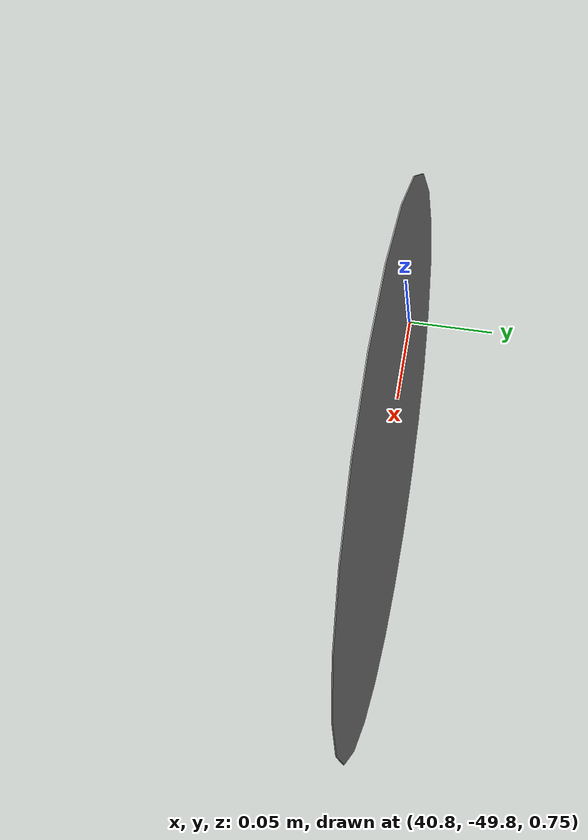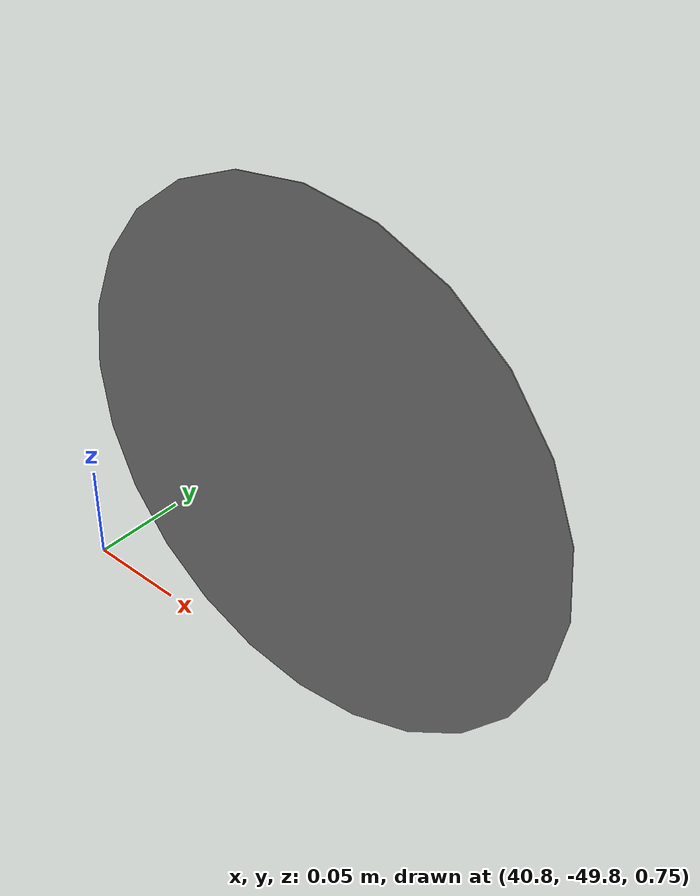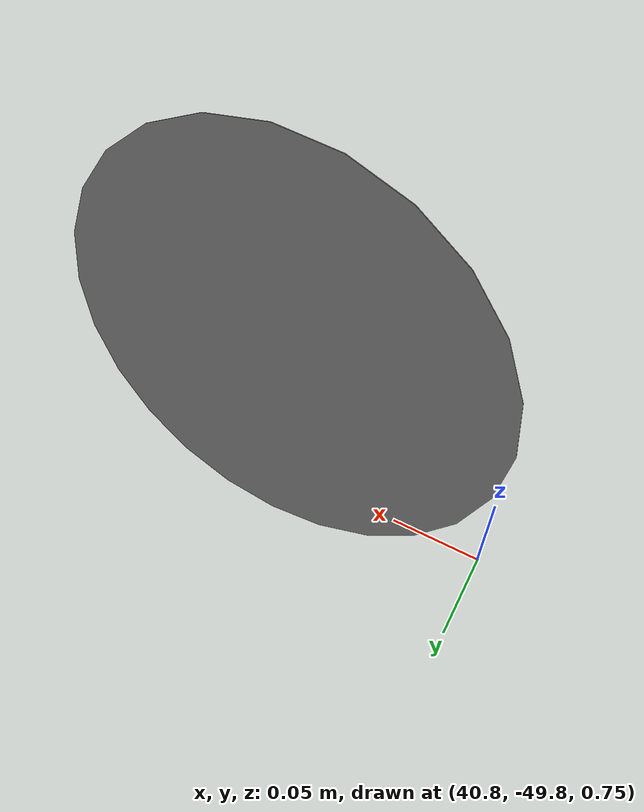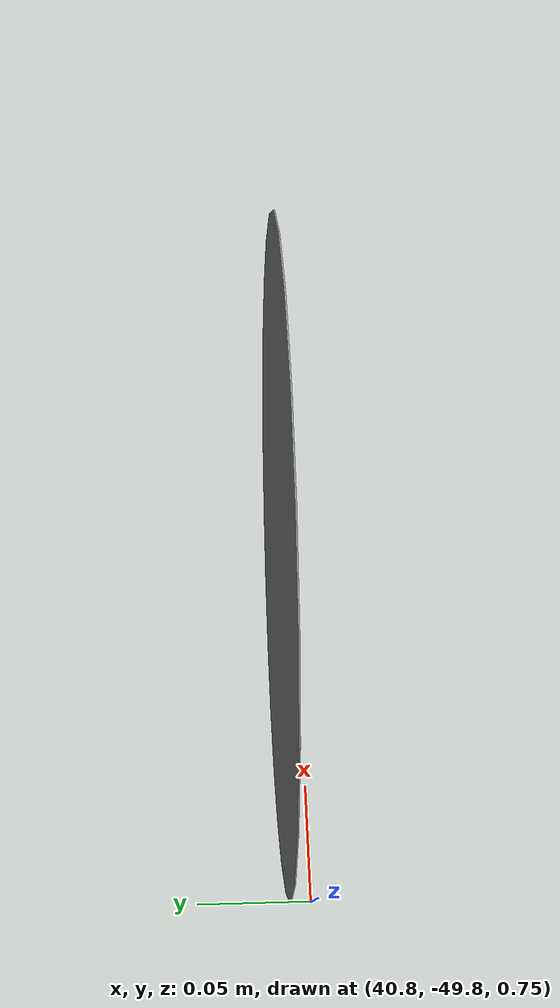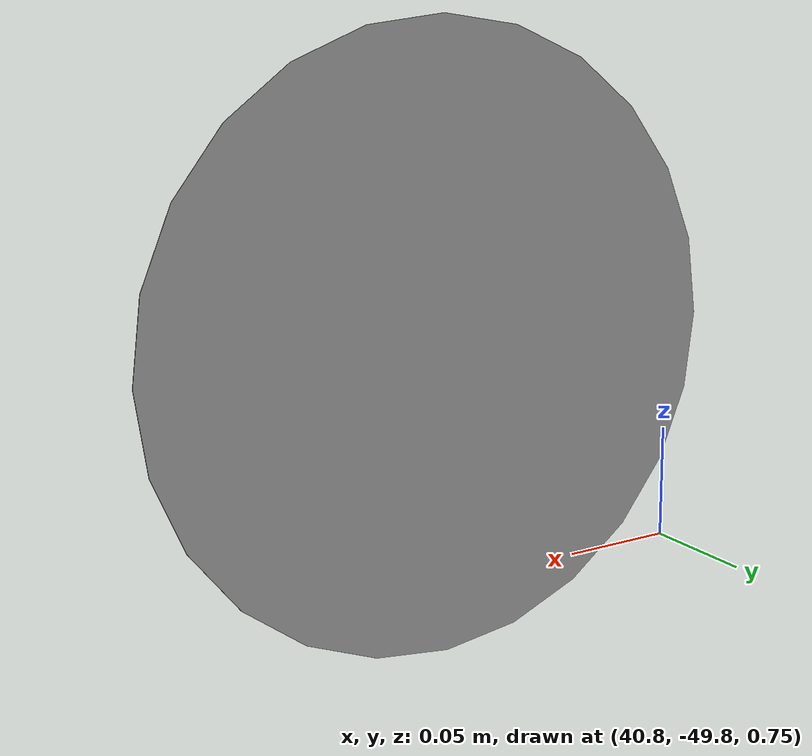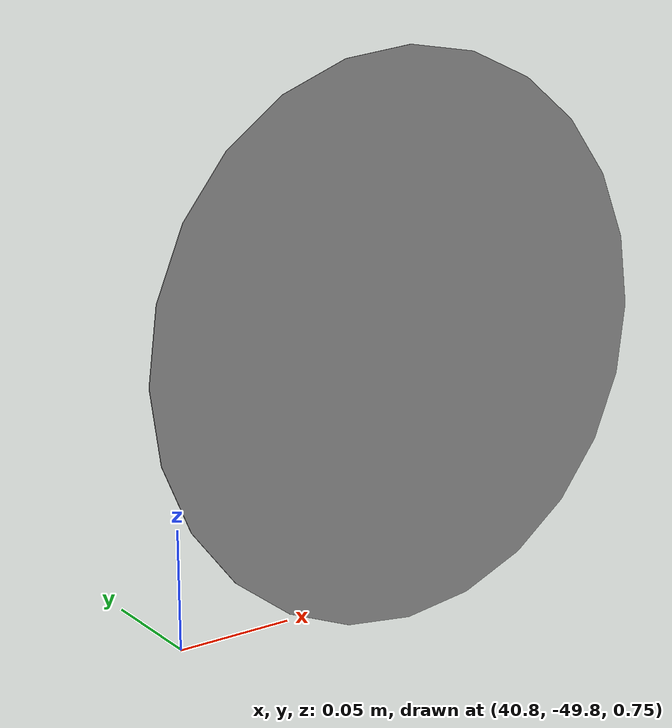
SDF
<sdf version="1.7">
 <world name="default">
  <model name="ground_plane">
   <static>1</static>
   <link name="link">
    <collision name="collision">
     <geometry><plane><normal>0 0 1</normal><size>100 100</size></plane></geometry>
     <surface>
      <contact><collide_bitmask>65535</collide_bitmask></contact>
      <friction><ode><mu>100</mu><mu2>50</mu2></ode></friction>
     </surface>
    </collision>
    <visual name="visual">
     <cast_shadows>0</cast_shadows>
     <geometry><plane><normal>0 0 1</normal><size>100 100</size></plane></geometry>
     <material>
      <script><uri>file://media/materials/scripts/gazebo.material</uri><name>Gazebo/DarkGrey</name></script>
     </material>
    </visual>
   </link>
  </model>
  <model name="soladonulmez">
   <link name="link">
    <inertial>
     <mass>0.0029489</mass>
     <inertia>
      <ixx>1.53589e-05</ixx>
      <ixy>0</ixy>
      <ixz>0</ixz>
      <iyy>3.07177e-05</iyy>
      <iyz>0</iyz>
      <izz>1.53589e-05</izz>
     </inertia>
    </inertial>
    <gravity>0</gravity>
    <visual name="visual">
     <geometry><box><size>0.25 1.3e-05 0.25</size></box></geometry>
     <material>
      <script>
       <uri>model://ornekkare/materials/scripts/repeated.material</uri>
       <uri>model://ornekkare/materials/textures/soladonulmezz.png</uri>
       <name>RepeatedTexture9</name>
      </script>
      <shader type="pixel"><normal_map>__default__</normal_map></shader>
      <ambient>0 0 0 1</ambient>
      <diffuse>0.7 0.7 0.7 1</diffuse>
      <specular>0.01 0.01 0.01 1</specular>
      <emissive>0.694 0.694 0.694 1</emissive>
      <lighting>0</lighting>
     </material>
     <transparency>1</transparency>
    </visual>
    <collision name="collision">
     <geometry><box><size>0.25 0.00011 0.25</size></box></geometry>
     <surface>
      <friction>
       <ode><mu>1</mu><mu2>1</mu2><fdir1>0 0 0</fdir1><slip1>0</slip1><slip2>0</slip2></ode>
       <torsional>
        <coefficient>1</coefficient>
        <patch_radius>0</patch_radius>
        <surface_radius>0</surface_radius>
        <use_patch_radius>1</use_patch_radius>
        <ode><slip>0</slip></ode>
       </torsional>
      </friction>
      <bounce><restitution_coefficient>0</restitution_coefficient><threshold>1e+06</threshold></bounce>
      <contact>
       <collide_without_contact>0</collide_without_contact>
       <collide_without_contact_bitmask>1</collide_without_contact_bitmask>
       <collide_bitmask>1</collide_bitmask>
       <ode>
        <soft_cfm>0</soft_cfm>
        <soft_erp>0.2</soft_erp>
        <kp>1e+13</kp>
        <kd>1</kd>
        <max_vel>0.01</max_vel>
        <min_depth>0</min_depth>
       </ode>
       <bullet>
        <split_impulse>1</split_impulse>
        <split_impulse_penetration_threshold>-0.01</split_impulse_penetration_threshold>
        <soft_cfm>0</soft_cfm>
        <soft_erp>0.2</soft_erp>
        <kp>1e+13</kp>
        <kd>1</kd>
       </bullet>
      </contact>
     </surface>
    </collision>
   </link>
   <static>1</static>
   <pose>46.8411 -41.1451 0.925 0 -0 0</pose>
  </model>
  <model name="parkyasak_clone_clone_0_clone_clone">
   <link name="link">
    <inertial>
     <mass>0.521459</mass>
     <inertia>
      <ixx>0.0434554</ixx>
      <ixy>0</ixy>
      <ixz>0</ixz>
      <iyy>0.0869098</iyy>
      <iyz>0</iyz>
      <izz>0.0434554</izz>
     </inertia>
    </inertial>
    <enable_wind>1</enable_wind>
    <gravity>0</gravity>
    <visual name="visual">
     <geometry><box><size>0.25 0.000107 0.25</size></box></geometry>
     <material>
      <script>
       <uri>model://parkyasak/materials/scripts/parkyasak.material</uri>
       <uri>model://parkyasak/materials/textures/parkyasak.png</uri>
       <name>RepeatedTexture13</name>
      </script>
      <shader type="pixel"><normal_map>__default__</normal_map></shader>
      <ambient>0 0 0 1</ambient>
      <diffuse>0.7 0.7 0.7 1</diffuse>
      <specular>0.01 0.01 0.01 1</specular>
      <emissive>0 0 0 1</emissive>
      <lighting>0</lighting>
     </material>
     <transparency>1</transparency>
    </visual>
    <collision name="collision">
     <geometry><box><size>0.25 0.000107 0.25</size></box></geometry>
     <surface>
      <friction>
       <ode><mu>1</mu><mu2>1</mu2><fdir1>0 0 0</fdir1><slip1>0</slip1><slip2>0</slip2></ode>
       <torsional>
        <coefficient>1</coefficient>
        <patch_radius>0</patch_radius>
        <surface_radius>0</surface_radius>
        <use_patch_radius>1</use_patch_radius>
        <ode><slip>0</slip></ode>
       </torsional>
      </friction>
      <bounce><restitution_coefficient>0</restitution_coefficient><threshold>1e+06</threshold></bounce>
      <contact>
       <collide_without_contact>0</collide_without_contact>
       <collide_without_contact_bitmask>1</collide_without_contact_bitmask>
       <collide_bitmask>1</collide_bitmask>
       <ode>
        <soft_cfm>0</soft_cfm>
        <soft_erp>0.2</soft_erp>
        <kp>1e+13</kp>
        <kd>1</kd>
        <max_vel>0.01</max_vel>
        <min_depth>0</min_depth>
       </ode>
       <bullet>
        <split_impulse>1</split_impulse>
        <split_impulse_penetration_threshold>-0.01</split_impulse_penetration_threshold>
        <soft_cfm>0</soft_cfm>
        <soft_erp>0.2</soft_erp>
        <kp>1e+13</kp>
        <kd>1</kd>
       </bullet>
      </contact>
     </surface>
    </collision>
   </link>
   <static>1</static>
   <pose>40.9207 -49.78 0.851932 0 -0 0</pose>
  </model>
  <model name="circle">
   <link name="link">
    <inertial>
     <mass>1</mass>
     <inertia><ixx>0.145833</ixx><ixy>0</ixy><ixz>0</ixz><iyy>0.145833</iyy><iyz>0</iyz><izz>0.125</izz></inertia>
    </inertial>
    <visual name="visual">
     <geometry><cylinder><radius>0.126069</radius><length>0.000448721</length></cylinder></geometry>
     <material>
      <script><name>Gazebo/Grey</name><uri>file://media/materials/scripts/gazebo.material</uri></script>
      <shader type="pixel"/>
     </material>
    </visual>
    <collision name="collision">
     <geometry><cylinder><radius>0.126069</radius><length>0.000449</length></cylinder></geometry>
     <surface>
      <friction>
       <ode><mu>1</mu><mu2>1</mu2><fdir1>0 0 0</fdir1><slip1>0</slip1><slip2>0</slip2></ode>
       <torsional>
        <coefficient>1</coefficient>
        <patch_radius>0</patch_radius>
        <surface_radius>0</surface_radius>
        <use_patch_radius>1</use_patch_radius>
        <ode><slip>0</slip></ode>
       </torsional>
      </friction>
      <bounce><restitution_coefficient>0</restitution_coefficient><threshold>1e+06</threshold></bounce>
      <contact>
       <collide_without_contact>0</collide_without_contact>
       <collide_without_contact_bitmask>1</collide_without_contact_bitmask>
       <collide_bitmask>1</collide_bitmask>
       <ode>
        <soft_cfm>0</soft_cfm>
        <soft_erp>0.2</soft_erp>
        <kp>1e+13</kp>
        <kd>1</kd>
        <max_vel>0.01</max_vel>
        <min_depth>0</min_depth>
       </ode>
       <bullet>
        <split_impulse>1</split_impulse>
        <split_impulse_penetration_threshold>-0.01</split_impulse_penetration_threshold>
        <soft_cfm>0</soft_cfm>
        <soft_erp>0.2</soft_erp>
        <kp>1e+13</kp>
        <kd>1</kd>
       </bullet>
      </contact>
     </surface>
    </collision>
   </link>
   <static>1</static>
   <pose>40.923 -49.7862 0.854817 1.5708 -0 0</pose>
  </model>
 </world>
</sdf>
